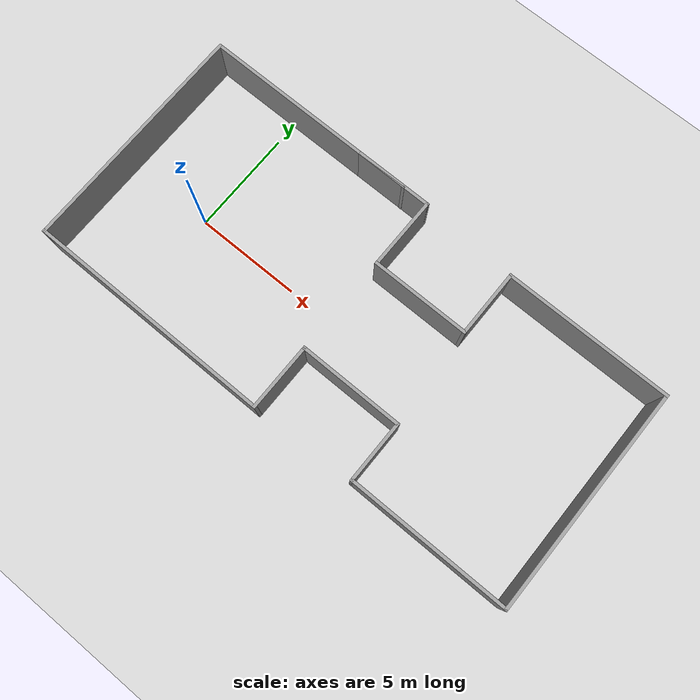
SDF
<sdf version="1.6">
 <world name="default">
  <light name="sun" type="directional">
   <pose>0 0 10 0 -0 0</pose>
   <diffuse>0.8 0.8 0.8 1</diffuse>
   <specular>0.2 0.2 0.2 1</specular>
   <attenuation>
    <range>1000</range>
    <constant>0.9</constant>
    <linear>0.01</linear>
    <quadratic>0.001</quadratic>
   </attenuation>
   <direction>-0.5 0.1 -0.9</direction>
  </light>
  <model name="ground_plane">
   <static>1</static>
   <link name="link">
    <collision name="collision">
     <geometry><plane><normal>0 0 1</normal><size>100 100</size></plane></geometry>
     <surface><friction><ode><mu>100</mu><mu2>50</mu2></ode></friction></surface>
    </collision>
    <visual name="visual">
     <cast_shadows>0</cast_shadows>
     <geometry><plane><normal>0 0 1</normal><size>100 100</size></plane></geometry>
     <material>
      <script><uri>file://media/materials/scripts/gazebo.material</uri><name>Gazebo/Grey</name></script>
     </material>
    </visual>
   </link>
  </model>
  <gravity>0 0 -9.8</gravity>
  <magnetic_field>6e-06 2.3e-05 -4.2e-05</magnetic_field>
  <atmosphere type="adiabatic"/>
  <physics name="default_physics" default="0" type="ode">
   <max_step_size>0.001</max_step_size>
   <real_time_factor>1</real_time_factor>
   <real_time_update_rate>1000</real_time_update_rate>
  </physics>
  <scene><ambient>0.4 0.4 0.4 1</ambient><background>0.7 0.7 0.7 1</background><shadows>1</shadows></scene>
  <audio><device>default</device></audio>
  <spherical_coordinates>
   <surface_model>EARTH_WGS84</surface_model>
   <latitude_deg>0</latitude_deg>
   <longitude_deg>0</longitude_deg>
   <elevation>0</elevation>
   <heading_deg>0</heading_deg>
  </spherical_coordinates>
  <model name="Untitled">
   <pose>7.92297 0.557823 0 0 0 -1.5724</pose>
   <link name="Wall_0">
    <collision name="Wall_0_Collision">
     <geometry><box><size>3.75 0.15 2.5</size></box></geometry>
     <pose>0 0 1.25 0 -0 0</pose>
    </collision>
    <visual name="Wall_0_Visual">
     <pose>0 0 1.25 0 -0 0</pose>
     <geometry><box><size>3.75 0.15 2.5</size></box></geometry>
     <material>
      <script><uri>file://media/materials/scripts/gazebo.material</uri><name>Gazebo/Grey</name></script>
      <ambient>1 1 1 1</ambient>
     </material>
     <meta><layer>0</layer></meta>
    </visual>
    <pose>-5.55 -2.225 0 0 -0 1.5708</pose>
   </link>
   <link name="Wall_1">
    <collision name="Wall_1_Collision">
     <geometry><box><size>3.5 0.15 2.5</size></box></geometry>
     <pose>0 0 1.25 0 -0 0</pose>
    </collision>
    <visual name="Wall_1_Visual">
     <pose>0 0 1.25 0 -0 0</pose>
     <geometry><box><size>3.5 0.15 2.5</size></box></geometry>
     <material>
      <script><uri>file://media/materials/scripts/gazebo.material</uri><name>Gazebo/Grey</name></script>
      <ambient>1 1 1 1</ambient>
     </material>
     <meta><layer>0</layer></meta>
    </visual>
    <pose>-3.875 -0.425 0 0 -0 0</pose>
   </link>
   <link name="Wall_10">
    <collision name="Wall_10_Collision">
     <geometry><box><size>3.25 0.15 2.5</size></box></geometry>
     <pose>0 0 1.25 0 -0 0</pose>
    </collision>
    <visual name="Wall_10_Visual">
     <pose>0 0 1.25 0 -0 0</pose>
     <geometry><box><size>3.25 0.15 2.5</size></box></geometry>
     <material>
      <script><uri>file://media/materials/scripts/gazebo.material</uri><name>Gazebo/Grey</name></script>
      <ambient>1 1 1 1</ambient>
     </material>
     <meta><layer>0</layer></meta>
    </visual>
    <pose>4 -0.425 0 0 -0 0</pose>
   </link>
   <link name="Wall_11">
    <collision name="Wall_11_Collision">
     <geometry><box><size>11.75 0.15 2.5</size></box></geometry>
     <pose>0 0 1.25 0 -0 0</pose>
    </collision>
    <visual name="Wall_11_Visual">
     <pose>0 0 1.25 0 -0 0</pose>
     <geometry><box><size>11.75 0.15 2.5</size></box></geometry>
     <material>
      <script><uri>file://media/materials/scripts/gazebo.material</uri><name>Gazebo/Grey</name></script>
      <ambient>1 1 1 1</ambient>
     </material>
     <meta><layer>0</layer></meta>
    </visual>
    <pose>5.55 -6.225 0 0 -0 -1.5708</pose>
   </link>
   <link name="Wall_12">
    <collision name="Wall_12_Collision">
     <geometry><box><size>11.25 0.15 2.5</size></box></geometry>
     <pose>0 0 1.25 0 -0 0</pose>
    </collision>
    <visual name="Wall_12_Visual">
     <pose>0 0 1.25 0 -0 0</pose>
     <geometry><box><size>11.25 0.15 2.5</size></box></geometry>
     <material>
      <script><uri>file://media/materials/scripts/gazebo.material</uri><name>Gazebo/Grey</name></script>
      <ambient>1 1 1 1</ambient>
     </material>
     <meta><layer>0</layer></meta>
    </visual>
    <pose>0 -12.025 0 0 -0 3.14159</pose>
   </link>
   <link name="Wall_13">
    <collision name="Wall_13_Collision">
     <geometry><box><size>10.5 0.15 2.5</size></box></geometry>
     <pose>0 0 1.25 0 -0 0</pose>
    </collision>
    <visual name="Wall_13_Visual">
     <pose>0 0 1.25 0 -0 0</pose>
     <geometry><box><size>10.5 0.15 2.5</size></box></geometry>
     <material>
      <script><uri>file://media/materials/scripts/gazebo.material</uri><name>Gazebo/Grey</name></script>
      <ambient>1 1 1 1</ambient>
     </material>
     <meta><layer>0</layer></meta>
    </visual>
    <pose>-5.55 -6.85 0 0 -0 1.5708</pose>
   </link>
   <link name="Wall_14">
    <collision name="Wall_14_Collision">
     <geometry><box><size>0.16 0.15 2.5</size></box></geometry>
     <pose>0 0 1.25 0 -0 0</pose>
    </collision>
    <visual name="Wall_14_Visual">
     <pose>0 0 1.25 0 -0 0</pose>
     <geometry><box><size>0.16 0.15 2.5</size></box></geometry>
     <material>
      <script><uri>file://media/materials/scripts/gazebo.material</uri><name>Gazebo/Grey</name></script>
      <ambient>1 1 1 1</ambient>
     </material>
     <meta><layer>0</layer></meta>
    </visual>
    <pose>-5.545 -1.675 0 0 -0 0</pose>
   </link>
   <link name="Wall_2">
    <collision name="Wall_2_Collision">
     <geometry><box><size>4.75 0.15 2.5</size></box></geometry>
     <pose>0 0 1.25 0 -0 0</pose>
    </collision>
    <visual name="Wall_2_Visual">
     <pose>0 0 1.25 0 -0 0</pose>
     <geometry><box><size>4.75 0.15 2.5</size></box></geometry>
     <material>
      <script><uri>file://media/materials/scripts/gazebo.material</uri><name>Gazebo/Grey</name></script>
      <ambient>1 1 1 1</ambient>
     </material>
     <meta><layer>0</layer></meta>
    </visual>
    <pose>-2.2 1.875 0 0 -0 1.5708</pose>
   </link>
   <link name="Wall_3">
    <collision name="Wall_3_Collision">
     <geometry><box><size>3.25 0.15 2.5</size></box></geometry>
     <pose>0 0 1.25 0 -0 0</pose>
    </collision>
    <visual name="Wall_3_Visual">
     <pose>0 0 1.25 0 -0 0</pose>
     <geometry><box><size>3.25 0.15 2.5</size></box></geometry>
     <material>
      <script><uri>file://media/materials/scripts/gazebo.material</uri><name>Gazebo/Grey</name></script>
      <ambient>1 1 1 1</ambient>
     </material>
     <meta><layer>0</layer></meta>
    </visual>
    <pose>-3.75 4.175 0 0 -0 3.14159</pose>
   </link>
   <link name="Wall_4">
    <collision name="Wall_4_Collision">
     <geometry><box><size>8 0.15 2.5</size></box></geometry>
     <pose>0 0 1.25 0 -0 0</pose>
    </collision>
    <visual name="Wall_4_Visual">
     <pose>0 0 1.25 0 -0 0</pose>
     <geometry><box><size>8 0.15 2.5</size></box></geometry>
     <material>
      <script><uri>file://media/materials/scripts/gazebo.material</uri><name>Gazebo/Grey</name></script>
      <ambient>1 1 1 1</ambient>
     </material>
     <meta><layer>0</layer></meta>
    </visual>
    <pose>-5.3 8.1 0 0 -0 1.5708</pose>
   </link>
   <link name="Wall_5">
    <collision name="Wall_5_Collision">
     <geometry><box><size>10.75 0.15 2.5</size></box></geometry>
     <pose>0 0 1.25 0 -0 0</pose>
    </collision>
    <visual name="Wall_5_Visual">
     <pose>0 0 1.25 0 -0 0</pose>
     <geometry><box><size>10.75 0.15 2.5</size></box></geometry>
     <material>
      <script><uri>file://media/materials/scripts/gazebo.material</uri><name>Gazebo/Grey</name></script>
      <ambient>1 1 1 1</ambient>
     </material>
     <meta><layer>0</layer></meta>
    </visual>
    <pose>0 12.025 0 0 -0 0</pose>
   </link>
   <link name="Wall_6">
    <collision name="Wall_6_Collision">
     <geometry><box><size>7.75 0.15 2.5</size></box></geometry>
     <pose>0 0 1.25 0 -0 0</pose>
    </collision>
    <visual name="Wall_6_Visual">
     <pose>0 0 1.25 0 -0 0</pose>
     <geometry><box><size>7.75 0.15 2.5</size></box></geometry>
     <material>
      <script><uri>file://media/materials/scripts/gazebo.material</uri><name>Gazebo/Grey</name></script>
      <ambient>1 1 1 1</ambient>
     </material>
     <meta><layer>0</layer></meta>
    </visual>
    <pose>5.3 8.225 0 0 -0 -1.5708</pose>
   </link>
   <link name="Wall_7">
    <collision name="Wall_7_Collision">
     <geometry><box><size>0.15 0.15 2.5</size></box></geometry>
     <pose>0 0 1.25 0 -0 0</pose>
    </collision>
    <visual name="Wall_7_Visual">
     <pose>0 0 1.25 0 -0 0</pose>
     <geometry><box><size>0.15 0.15 2.5</size></box></geometry>
     <material>
      <script><uri>file://media/materials/scripts/gazebo.material</uri><name>Gazebo/Grey</name></script>
      <ambient>1 1 1 1</ambient>
     </material>
     <meta><layer>0</layer></meta>
    </visual>
    <pose>5.3 4.425 0 0 -0 0</pose>
   </link>
   <link name="Wall_8">
    <collision name="Wall_8_Collision">
     <geometry><box><size>3 0.15 2.5</size></box></geometry>
     <pose>0 0 1.25 0 -0 0</pose>
    </collision>
    <visual name="Wall_8_Visual">
     <pose>0 0 1.25 0 -0 0</pose>
     <geometry><box><size>3 0.15 2.5</size></box></geometry>
     <material>
      <script><uri>file://media/materials/scripts/gazebo.material</uri><name>Gazebo/Grey</name></script>
      <ambient>1 1 1 1</ambient>
     </material>
     <meta><layer>0</layer></meta>
    </visual>
    <pose>3.875 4.425 0 0 -0 3.14159</pose>
   </link>
   <link name="Wall_9">
    <collision name="Wall_9_Collision">
     <geometry><box><size>5 0.15 2.5</size></box></geometry>
     <pose>0 0 1.25 0 -0 0</pose>
    </collision>
    <visual name="Wall_9_Visual">
     <pose>0 0 1.25 0 -0 0</pose>
     <geometry><box><size>5 0.15 2.5</size></box></geometry>
     <material>
      <script><uri>file://media/materials/scripts/gazebo.material</uri><name>Gazebo/Grey</name></script>
      <ambient>1 1 1 1</ambient>
     </material>
     <meta><layer>0</layer></meta>
    </visual>
    <pose>2.45 2 0 0 -0 -1.5708</pose>
   </link>
   <static>1</static>
  </model>
 </world>
</sdf>
